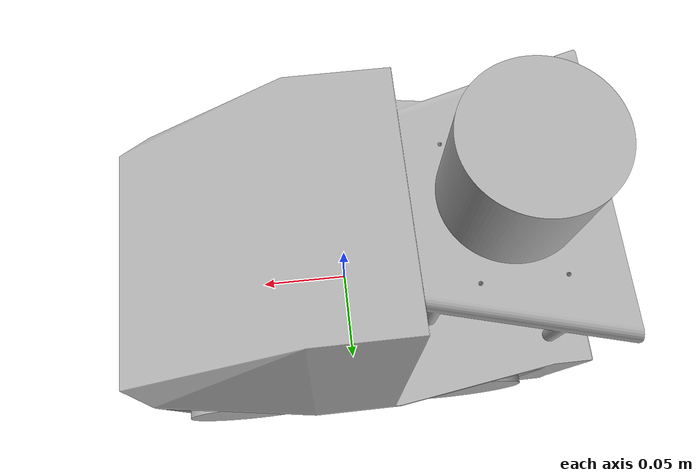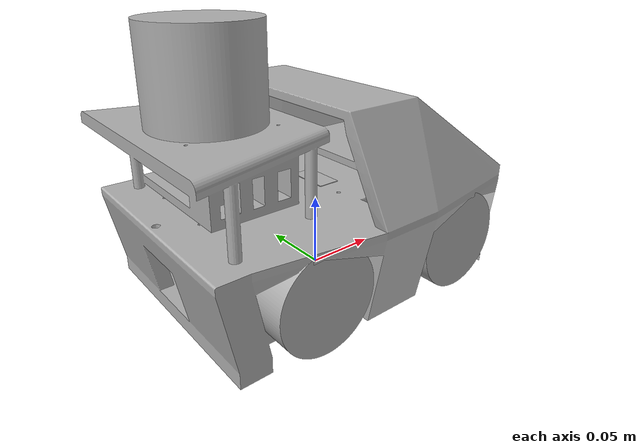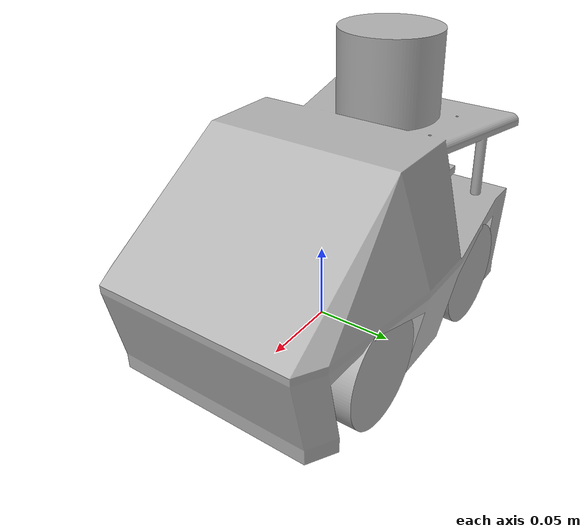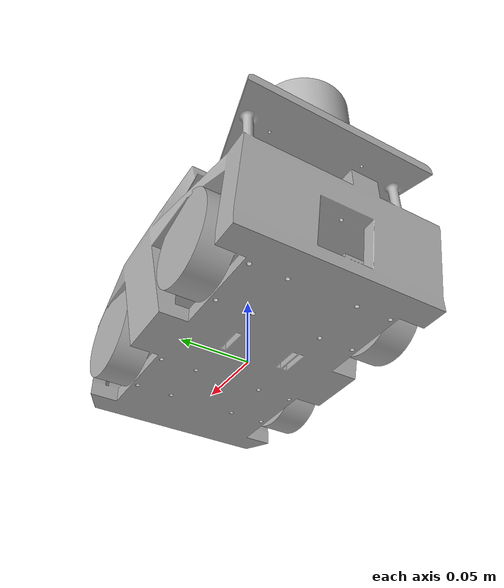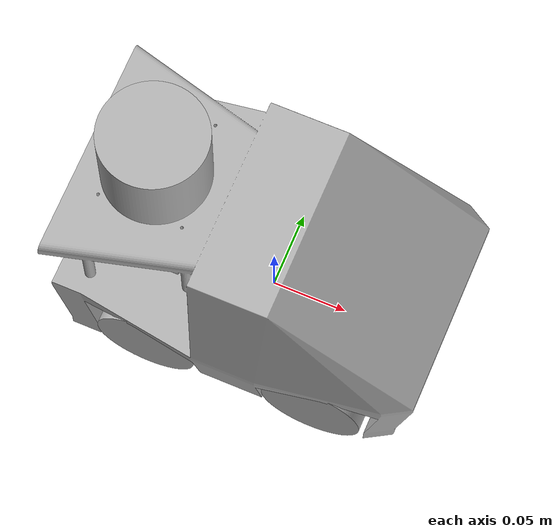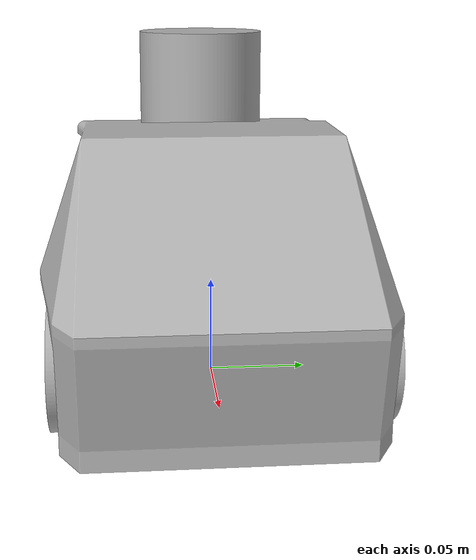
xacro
<?xml version="1.0" ?>
<robot name="slambot_gazebo_sim" xmlns:xacro="http://www.ros.org/wiki/xacro">

<xacro:macro name="slambot_gazebo_sim" params="prefix">

<xacro:include filename="$(find slambot_gazebo_sim_description)/urdf/materials.xacro" />
<xacro:include filename="$(find slambot_gazebo_sim_description)/urdf/slambot_gazebo_sim.trans" />
<xacro:include filename="$(find slambot_gazebo_sim_description)/urdf/slambot_gazebo_sim.gazebo" />
<xacro:property name="wheel_radius" value="0.031"/>

<link name="${prefix}base_link">
  <inertial>
    <origin xyz="0 0 0" rpy="0 0 0"/>
    <mass value="1.0"/>
    <inertia ixx="0.005" ixy="0.0" ixz="0.0" iyy="0.005" iyz="0.0" izz="0.005"/>
  </inertial>
  <visual>
    <origin xyz="0 0 0" rpy="0 0 0"/>
    <geometry>
      <mesh filename="file://$(find slambot_gazebo_sim_description)/meshes/base_link.stl" scale="0.001 0.001 0.001"/>
    </geometry>
    <material name="slambot_gazebo_sim_silver"/>
  </visual>
  <collision>
    <origin xyz="0 0 0" rpy="0 0 0"/>
    <geometry>
      <mesh filename="file://$(find slambot_gazebo_sim_description)/meshes/base_link.stl" scale="0.001 0.001 0.001"/>
    </geometry>
  </collision>
</link>

<link name="${prefix}FL_wheel">
  <inertial>
    <origin xyz="0 0.0115 0" rpy="0 0 0"/>
    <mass value="0.075"/>
    <inertia ixx="2.4e-05" iyy="4.1e-05" izz="2.4e-05" ixy="0.0" iyz="0.0" ixz="0.0"/>
  </inertial>
  <visual>
    <origin xyz="0 0 0" rpy="0 0 0"/>
    <geometry>
      <mesh filename="file://$(find slambot_gazebo_sim_description)/meshes/FL_wheel.stl" scale="0.001 0.001 0.001"/>
    </geometry>
    <material name="slambot_gazebo_sim_silver"/>
  </visual>
  <collision>
    <origin xyz="0 0 0" rpy="0 0 0"/>
    <geometry>
      <mesh filename="file://$(find slambot_gazebo_sim_description)/meshes/FL_wheel.stl" scale="0.001 0.001 0.001"/>
    </geometry>
  </collision>
</link>

<link name="${prefix}BL_wheel">
  <inertial>
    <origin xyz="0.0 0.0115 0" rpy="0 0 0"/>
    <mass value="0.075"/>
    <inertia ixx="2.4e-05" iyy="4.1e-05" izz="2.4e-05" ixy="0.0" iyz="-0.0" ixz="0.0"/>
  </inertial>
  <visual>
    <origin xyz="0 0 0" rpy="0 0 0"/>
    <geometry>
      <mesh filename="file://$(find slambot_gazebo_sim_description)/meshes/BL_wheel.stl" scale="0.001 0.001 0.001"/>
    </geometry>
    <material name="slambot_gazebo_sim_silver"/>
  </visual>
  <collision>
    <origin xyz="0 0 0" rpy="0 0 0"/>
    <geometry>
      <mesh filename="file://$(find slambot_gazebo_sim_description)/meshes/BL_wheel.stl" scale="0.001 0.001 0.001"/>
    </geometry>
  </collision>
</link>

<link name="${prefix}FR_wheel">
  <inertial>
    <origin xyz="0 -0.0115 0" rpy="0 0 0"/>
    <mass value="0.075"/>
    <inertia ixx="2.4e-05" iyy="4.1e-05" izz="2.4e-05" ixy="-0.0" iyz="-0.0" ixz="0.0"/>
  </inertial>
  <visual>
    <origin xyz="0 0 0" rpy="0 0 0"/>
    <geometry>
      <mesh filename="file://$(find slambot_gazebo_sim_description)/meshes/FR_wheel.stl" scale="0.001 0.001 0.001"/>
    </geometry>
    <material name="slambot_gazebo_sim_silver"/>
  </visual>
  <collision>
    <origin xyz="0 0 0" rpy="0 0 0"/>
    <geometry>
      <mesh filename="file://$(find slambot_gazebo_sim_description)/meshes/FR_wheel.stl" scale="0.001 0.001 0.001"/>
    </geometry>
  </collision>
</link>

<link name="${prefix}BR_wheel">
  <inertial>
    <origin xyz="0 -0.0115 0" rpy="0 0 0"/>
    <mass value="0.075"/>
    <inertia ixx="2.4e-05" iyy="4.1e-05" izz="2.4e-05" ixy="-0.0" iyz="0.0" ixz="0.0"/>
  </inertial>
  <visual>
    <origin xyz="0 0 0" rpy="0 0 0"/>
    <geometry>
      <mesh filename="file://$(find slambot_gazebo_sim_description)/meshes/BR_wheel.stl" scale="0.001 0.001 0.001"/>
    </geometry>
    <material name="slambot_gazebo_sim_silver"/>
  </visual>
  <collision>
    <origin xyz="0 0 0" rpy="0 0 0"/>
    <geometry>
      <mesh filename="file://$(find slambot_gazebo_sim_description)/meshes/BR_wheel.stl" scale="0.001 0.001 0.001"/>
    </geometry>
  </collision>
</link>

<link name="${prefix}Lidar">
  <inertial>
    <origin xyz="0.0 0.0 0.029" rpy="0 0 0"/>
    <mass value="1.0"/>
    <inertia ixx="0.001028" iyy="0.001028" izz="0.001073" ixy="0.0" iyz="0.0" ixz="0.0"/>
  </inertial>
  <visual>
    <origin xyz="0 0 0" rpy="0 0 0"/>
    <geometry>
      <mesh filename="file://$(find slambot_gazebo_sim_description)/meshes/Lidar.stl" scale="0.001 0.001 0.001"/>
    </geometry>
    <material name="slambot_gazebo_sim_silver"/>
  </visual>
  <collision>
    <origin xyz="0 0 0" rpy="0 0 0"/>
    <geometry>
      <mesh filename="file://$(find slambot_gazebo_sim_description)/meshes/Lidar.stl" scale="0.001 0.001 0.001"/>
    </geometry>
  </collision>
</link>

<link name="${prefix}sensor_box">
  <inertial>
    <origin xyz="0 0 0" rpy="0 0 0"/>
    <mass value="0.001"/>
    <inertia
      ixx="1.403e-07" iyy="3.767e-08" izz="1.777e-07"
      ixy="0" ixz="0" iyz="0"/>
  </inertial>
  <visual>
    <origin xyz="0 0 0" rpy="0 0 0"/>
    <geometry>
      <box size="0.015 0.029 0.001"/>
    </geometry>
    <material name="slambot_gazebo_sim_silver"/>
  </visual>
  <collision>
    <origin xyz="0 0 0" rpy="0 0 0"/>
    <geometry>
      <box size="0.015 0.029 0.001"/>
    </geometry>
  </collision>
</link>

<joint name="${prefix}FL_joint" type="continuous">
  <origin xyz="0.058 0.05705 ${wheel_radius}" rpy="0 0 0"/>
  <parent link="${prefix}base_link"/>
  <child link="${prefix}FL_wheel"/>
  <axis xyz="0.0 1.0 0.0"/>
  <dynamics damping="0.1" friction="0.0"/>
</joint>

<joint name="${prefix}BL_joint" type="continuous">
  <origin xyz="-0.055 0.05705 ${wheel_radius}" rpy="0 0 0"/>
  <parent link="${prefix}base_link"/>
  <child link="${prefix}BL_wheel"/>
  <axis xyz="0.0 1.0 0.0"/>
  <dynamics damping="0.1" friction="0.0"/>
</joint>

<joint name="${prefix}FR_joint" type="continuous">
  <origin xyz="0.058 -0.05705 ${wheel_radius}" rpy="0 0 0"/>
  <parent link="${prefix}base_link"/>
  <child link="${prefix}FR_wheel"/>
  <axis xyz="0.0 1.0 0.0"/>
  <dynamics damping="0.1" friction="0.0"/>
</joint>

<joint name="${prefix}BR_joint" type="continuous">
  <origin xyz="-0.055 -0.05705 ${wheel_radius}" rpy="0 0 0"/>
  <parent link="${prefix}base_link"/>
  <child link="${prefix}BR_wheel"/>
  <axis xyz="0.0 1.0 0.0"/>
  <dynamics damping="0.1" friction="0.0"/>
</joint>

<joint name="${prefix}Lidar_joint" type="fixed">
  <origin xyz="-0.0785 0.0 0.118031" rpy="0 0 0"/>
  <parent link="${prefix}base_link"/>
  <child link="${prefix}Lidar"/>
  <axis xyz="0.0 0.0 1.0"/>
</joint>

<joint name="${prefix}sensor_box_joint" type="fixed">
  <origin xyz="0 0 0.065" rpy="0 0 0"/>
  <parent link="${prefix}base_link"/>
  <child link="${prefix}sensor_box"/>
  <preserveFixedJoint>true</preserveFixedJoint>
</joint>

</xacro:macro>

<xacro:slambot_gazebo_sim prefix=""/>

</robot>

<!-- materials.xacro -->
<robot name="slambot_gazebo_sim" xmlns:xacro="http://www.ros.org/wiki/xacro" >

<material name="slambot_gazebo_sim_silver">
  <color rgba="0.700 0.700 0.700 1.000"/>
</material>

<material name="slambot_gazebo_sim_gold">
  <color rgba="0.300 0.100 0.100 1.000"/>
</material>

</robot>

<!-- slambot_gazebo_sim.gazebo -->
<robot name="slambot_gazebo_sim" xmlns:xacro="http://www.ros.org/wiki/xacro" >

<xacro:property name="body_color" value="Gazebo/Silver" />

<gazebo reference="base_link">
  <material>${body_color}</material>
  <mu1>0.8</mu1>
  <mu2>0.8</mu2>
  <self_collide>true</self_collide>
  <gravity>true</gravity>
</gazebo>

<gazebo reference="FL_wheel">
  <material>${body_color}</material>
  <mu1>0.8</mu1>
  <mu2>0.8</mu2>
  <self_collide>true</self_collide>
</gazebo>

<gazebo reference="BL_wheel">
  <material>${body_color}</material>
  <mu1>1.0</mu1>
  <mu2>1.0</mu2>
  <self_collide>true</self_collide>
</gazebo>

<gazebo reference="FR_wheel">
  <material>${body_color}</material>
  <mu1>0.8</mu1>
  <mu2>0.8</mu2>
  <self_collide>true</self_collide>
</gazebo>

<gazebo reference="BR_wheel">
  <material>${body_color}</material>
  <mu1>1.0</mu1>
  <mu2>1.0</mu2>
  <self_collide>true</self_collide>
</gazebo>

<gazebo reference="Lidar">
  <material>${body_color}</material>
  <mu1>0.2</mu1>
  <mu2>0.2</mu2>
  <self_collide>true</self_collide>
</gazebo>

<gazebo reference="sensor_box">
  <material>"${body_color}"</material>
  <mu1>0.2</mu1>
  <mu2>0.2</mu2>
  <self_collide>true</self_collide>
</gazebo>

<gazebo reference="Lidar">
  <sensor name='gpu_lidar' type='gpu_lidar'>
    <plugin
      filename="gz-sim-sensors-system"
      name="gz::sim::systems::Sensors">
      <render_engine>ogre2</render_engine>
    </plugin>
    <frame_id>Lidar</frame_id>
    <pose relative_to='Lidar'>0 0 0.05 0 0 0</pose>
    <topic>scan</topic>
    <update_rate>30</update_rate>
    <lidar>
        <scan>
            <horizontal>
                <samples>720</samples>
                <resolution>1</resolution>
                <min_angle>-3.14</min_angle>
                <max_angle>3.14</max_angle>
            </horizontal>
        </scan>
        <range>
            <min>0.01</min>
            <max>10.0</max>
            <resolution>0.005</resolution>
        </range>
        <noise>
          <type>gaussian</type>
          <mean>0.0</mean>
          <stddev>0.001</stddev>
        </noise>
    </lidar>

    <always_on>1</always_on>
    <visualize>1</visualize>
  </sensor>
</gazebo>

<gazebo>
  <plugin filename="gz-sim-imu-system"
        name="gz::sim::systems::Imu">
  </plugin>
</gazebo>

<gazebo reference="sensor_box">
  <sensor name="imu_sensor" type="imu">
    <always_on>1</always_on>
    <update_rate>1</update_rate>
    <visualize>true</visualize>
    <topic>imu</topic>
  </sensor>
</gazebo>

<gazebo>
  <plugin filename="gz-sim-diff-drive-system" name="gz::sim::systems::DiffDrive">
    <left_joint>BL_joint</left_joint>
    <right_joint>BR_joint</right_joint>
    <wheel_separation>0.15</wheel_separation>
    <wheel_radius>0.031</wheel_radius>

    <topic>cmd_vel</topic>
    <odom_topic>odom</odom_topic>
    <frame_id>odom</frame_id>
    <child_frame_id>base_link</child_frame_id>
    <odom_publisher_frequency>30</odom_publisher_frequency>

  </plugin>
</gazebo>

</robot>
